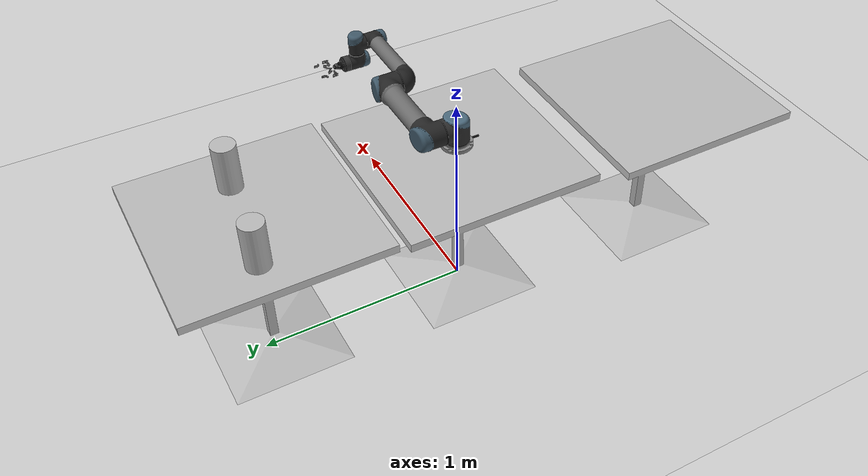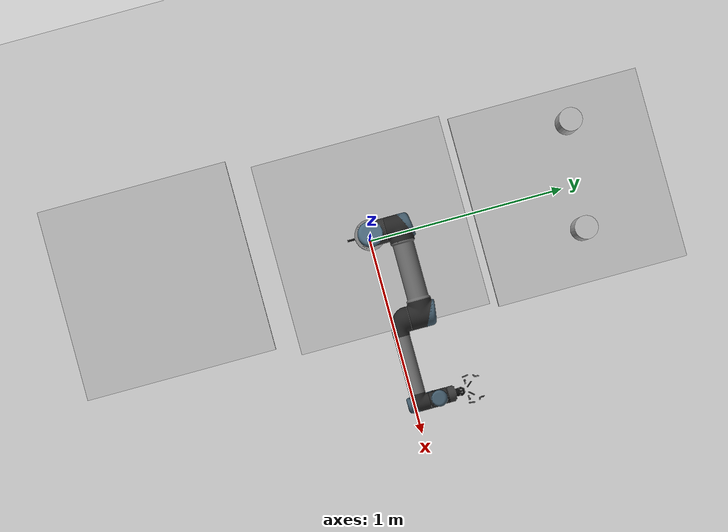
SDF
<sdf version="1.7">
 <world name="default">
  <light name="sun" type="directional">
   <pose>0 0 10 0 -0 0</pose>
   <diffuse>0.8 0.8 0.8 1</diffuse>
   <specular>0.2 0.2 0.2 1</specular>
   <attenuation>
    <range>1000</range>
    <constant>0.9</constant>
    <linear>0.01</linear>
    <quadratic>0.001</quadratic>
   </attenuation>
   <direction>-0.5 0.1 -0.9</direction>
   <spot><inner_angle>0</inner_angle><outer_angle>0</outer_angle><falloff>0</falloff></spot>
  </light>
  <model name="ground_plane">
   <static>1</static>
   <link name="link">
    <collision name="collision">
     <geometry><plane><normal>0 0 1</normal><size>100 100</size></plane></geometry>
     <surface>
      <contact><collide_bitmask>65535</collide_bitmask></contact>
      <friction><ode><mu>100</mu><mu2>50</mu2></ode></friction>
     </surface>
    </collision>
    <visual name="visual">
     <cast_shadows>0</cast_shadows>
     <geometry><plane><normal>0 0 1</normal><size>100 100</size></plane></geometry>
     <material>
      <script><uri>file://media/materials/scripts/gazebo.material</uri><name>Gazebo/Grey</name></script>
     </material>
    </visual>
   </link>
  </model>
  <gravity>0 0 -9.8</gravity>
  <magnetic_field>6e-06 2.3e-05 -4.2e-05</magnetic_field>
  <atmosphere type="adiabatic"/>
  <physics type="ode">
   <max_step_size>0.001</max_step_size>
   <real_time_factor>1</real_time_factor>
   <real_time_update_rate>1000</real_time_update_rate>
  </physics>
  <scene><ambient>0.4 0.4 0.4 1</ambient><background>0.7 0.7 0.7 1</background><shadows>1</shadows></scene>
  <spherical_coordinates>
   <surface_model>EARTH_WGS84</surface_model>
   <latitude_deg>0</latitude_deg>
   <longitude_deg>0</longitude_deg>
   <elevation>0</elevation>
   <heading_deg>0</heading_deg>
  </spherical_coordinates>
  <model name="cafe_table">
   <link name="link">
    <visual name="visual">
     <geometry><mesh><uri>model://cafe_table/meshes/cafe_table.dae</uri></mesh></geometry>
     <material><shader type="pixel"/></material>
    </visual>
    <collision name="surface">
     <pose>0 0 0.755 0 -0 0</pose>
     <geometry><box><size>0.913 0.913 0.04</size></box></geometry>
     <surface>
      <friction>
       <ode><mu>1</mu><mu2>1</mu2><fdir1>0 0 0</fdir1><slip1>0</slip1><slip2>0</slip2></ode>
       <torsional>
        <coefficient>1</coefficient>
        <patch_radius>0</patch_radius>
        <surface_radius>0</surface_radius>
        <use_patch_radius>1</use_patch_radius>
        <ode><slip>0</slip></ode>
       </torsional>
      </friction>
      <bounce><restitution_coefficient>0</restitution_coefficient><threshold>1e+06</threshold></bounce>
      <contact>
       <collide_without_contact>0</collide_without_contact>
       <collide_without_contact_bitmask>1</collide_without_contact_bitmask>
       <collide_bitmask>1</collide_bitmask>
       <ode>
        <soft_cfm>0</soft_cfm>
        <soft_erp>0.2</soft_erp>
        <kp>1e+13</kp>
        <kd>1</kd>
        <max_vel>0.01</max_vel>
        <min_depth>0</min_depth>
       </ode>
       <bullet>
        <split_impulse>1</split_impulse>
        <split_impulse_penetration_threshold>-0.01</split_impulse_penetration_threshold>
        <soft_cfm>0</soft_cfm>
        <soft_erp>0.2</soft_erp>
        <kp>1e+13</kp>
        <kd>1</kd>
       </bullet>
      </contact>
     </surface>
    </collision>
    <collision name="base">
     <pose>0 0 0.02 0 -0 0</pose>
     <geometry><box><size>0.56 0.56 0.04</size></box></geometry>
     <surface>
      <friction>
       <ode><mu>1</mu><mu2>1</mu2><fdir1>0 0 0</fdir1><slip1>0</slip1><slip2>0</slip2></ode>
       <torsional>
        <coefficient>1</coefficient>
        <patch_radius>0</patch_radius>
        <surface_radius>0</surface_radius>
        <use_patch_radius>1</use_patch_radius>
        <ode><slip>0</slip></ode>
       </torsional>
      </friction>
      <bounce><restitution_coefficient>0</restitution_coefficient><threshold>1e+06</threshold></bounce>
      <contact>
       <collide_without_contact>0</collide_without_contact>
       <collide_without_contact_bitmask>1</collide_without_contact_bitmask>
       <collide_bitmask>1</collide_bitmask>
       <ode>
        <soft_cfm>0</soft_cfm>
        <soft_erp>0.2</soft_erp>
        <kp>1e+13</kp>
        <kd>1</kd>
        <max_vel>0.01</max_vel>
        <min_depth>0</min_depth>
       </ode>
       <bullet>
        <split_impulse>1</split_impulse>
        <split_impulse_penetration_threshold>-0.01</split_impulse_penetration_threshold>
        <soft_cfm>0</soft_cfm>
        <soft_erp>0.2</soft_erp>
        <kp>1e+13</kp>
        <kd>1</kd>
       </bullet>
      </contact>
     </surface>
    </collision>
    <collision name="column">
     <pose>0 0 0.37 0 -0 0</pose>
     <geometry><box><size>0.042 0.042 0.74</size></box></geometry>
     <surface>
      <friction>
       <ode><mu>1</mu><mu2>1</mu2><fdir1>0 0 0</fdir1><slip1>0</slip1><slip2>0</slip2></ode>
       <torsional>
        <coefficient>1</coefficient>
        <patch_radius>0</patch_radius>
        <surface_radius>0</surface_radius>
        <use_patch_radius>1</use_patch_radius>
        <ode><slip>0</slip></ode>
       </torsional>
      </friction>
      <bounce><restitution_coefficient>0</restitution_coefficient><threshold>1e+06</threshold></bounce>
      <contact>
       <collide_without_contact>0</collide_without_contact>
       <collide_without_contact_bitmask>1</collide_without_contact_bitmask>
       <collide_bitmask>1</collide_bitmask>
       <ode>
        <soft_cfm>0</soft_cfm>
        <soft_erp>0.2</soft_erp>
        <kp>1e+13</kp>
        <kd>1</kd>
        <max_vel>0.01</max_vel>
        <min_depth>0</min_depth>
       </ode>
       <bullet>
        <split_impulse>1</split_impulse>
        <split_impulse_penetration_threshold>-0.01</split_impulse_penetration_threshold>
        <soft_cfm>0</soft_cfm>
        <soft_erp>0.2</soft_erp>
        <kp>1e+13</kp>
        <kd>1</kd>
       </bullet>
      </contact>
     </surface>
    </collision>
   </link>
   <static>1</static>
  </model>
  <model name="cafe_table_0_clone_0">
   <static>1</static>
   <link name="link">
    <collision name="surface">
     <pose>0 0 0.755 0 -0 0</pose>
     <geometry><box><size>0.913 0.913 0.04</size></box></geometry>
    </collision>
    <collision name="column">
     <pose>0 0 0.37 0 -0 0</pose>
     <geometry><box><size>0.042 0.042 0.74</size></box></geometry>
    </collision>
    <collision name="base">
     <pose>0 0 0.02 0 -0 0</pose>
     <geometry><box><size>0.56 0.56 0.04</size></box></geometry>
    </collision>
    <visual name="visual">
     <geometry><mesh><uri>model://cafe_table/meshes/cafe_table.dae</uri></mesh></geometry>
    </visual>
   </link>
   <pose>0.024717 0.95271 0 0 -0 0</pose>
  </model>
  <model name="cafe_table_0_clone_0_clone_0">
   <static>1</static>
   <link name="link">
    <collision name="surface">
     <pose>0 0 0.755 0 -0 0</pose>
     <geometry><box><size>0.913 0.913 0.04</size></box></geometry>
    </collision>
    <collision name="column">
     <pose>0 0 0.37 0 -0 0</pose>
     <geometry><box><size>0.042 0.042 0.74</size></box></geometry>
    </collision>
    <collision name="base">
     <pose>0 0 0.02 0 -0 0</pose>
     <geometry><box><size>0.56 0.56 0.04</size></box></geometry>
    </collision>
    <visual name="visual">
     <geometry><mesh><uri>model://cafe_table/meshes/cafe_table.dae</uri></mesh></geometry>
    </visual>
   </link>
   <pose>-0.057237 -1.02563 0 0 -0 0</pose>
  </model>
  <model name="beer_clone">
   <link name="link">
    <pose>0 0 0.115 0 -0 0</pose>
    <inertial>
     <mass>0.39</mass>
     <inertia><ixx>0.00058</ixx><ixy>0</ixy><ixz>0</ixz><iyy>0.00058</iyy><iyz>0</iyz><izz>0.00019</izz></inertia>
    </inertial>
    <collision name="collision">
     <geometry><cylinder><radius>0.055</radius><length>0.23</length></cylinder></geometry>
    </collision>
    <visual name="visual">
     <geometry><cylinder><radius>0.055</radius><length>0.23</length></cylinder></geometry>
     <material>
      <script>
       <uri>model://beer/materials/scripts</uri>
       <uri>model://beer/materials/textures</uri>
       <name>Beer/Diffuse</name>
      </script>
     </material>
    </visual>
   </link>
   <pose>-0.265345 1.02876 0.775001 2.3e-05 5e-06 0.001222</pose>
  </model>
  <model name="robot">
   <joint name="world_joint" type="fixed">
    <pose relative_to="__model__">0 0 0 0 -0 0</pose>
    <parent>world</parent>
    <child>base_link</child>
   </joint>
   <link name="base_link">
    <pose relative_to="world_joint">0 0 0 0 -0 0</pose>
    <inertial>
     <mass>4</mass>
     <inertia>
      <ixx>0.00443333</ixx>
      <ixy>0</ixy>
      <ixz>0</ixz>
      <iyy>0.00443333</iyy>
      <iyz>0</iyz>
      <izz>0.0072</izz>
     </inertia>
    </inertial>
    <collision name="base_link_collision">
     <geometry>
      <mesh>
       <scale>1 1 1</scale>
       <uri>/home/jack/catkin_ws/src/IE482-SP24-PROJECT/universal_robot/ur_description/meshes/ur5/collision/base.stl</uri>
      </mesh>
     </geometry>
    </collision>
    <visual name="base_link_visual">
     <geometry>
      <mesh>
       <scale>1 1 1</scale>
       <uri>/home/jack/catkin_ws/src/IE482-SP24-PROJECT/universal_robot/ur_description/meshes/ur5/visual/base.dae</uri>
      </mesh>
     </geometry>
    </visual>
   </link>
   <joint name="shoulder_pan_joint" type="revolute">
    <pose relative_to="base_link">0 0 0.089159 0 -0 0</pose>
    <parent>base_link</parent>
    <child>shoulder_link</child>
    <axis>
     <xyz>0 0 1</xyz>
     <limit><lower>-3.14159</lower><upper>3.14159</upper><effort>150</effort><velocity>3.15</velocity></limit>
     <dynamics>
      <damping>0</damping>
      <friction>0</friction>
      <spring_reference>0</spring_reference>
      <spring_stiffness>0</spring_stiffness>
     </dynamics>
    </axis>
   </joint>
   <link name="shoulder_link">
    <pose relative_to="shoulder_pan_joint">0 0 0 0 -0 0</pose>
    <inertial>
     <mass>3.7</mass>
     <inertia>
      <ixx>0.0102675</ixx>
      <ixy>0</ixy>
      <ixz>0</ixz>
      <iyy>0.0102675</iyy>
      <iyz>0</iyz>
      <izz>0.00666</izz>
     </inertia>
    </inertial>
    <collision name="shoulder_link_collision">
     <geometry>
      <mesh>
       <scale>1 1 1</scale>
       <uri>/home/jack/catkin_ws/src/IE482-SP24-PROJECT/universal_robot/ur_description/meshes/ur5/collision/shoulder.stl</uri>
      </mesh>
     </geometry>
    </collision>
    <visual name="shoulder_link_visual">
     <geometry>
      <mesh>
       <scale>1 1 1</scale>
       <uri>/home/jack/catkin_ws/src/IE482-SP24-PROJECT/universal_robot/ur_description/meshes/ur5/visual/shoulder.dae</uri>
      </mesh>
     </geometry>
    </visual>
    <self_collide>1</self_collide>
   </link>
   <joint name="shoulder_lift_joint" type="revolute">
    <pose relative_to="shoulder_link">0 0.13585 0 3.14159 1.57079 3.14159</pose>
    <parent>shoulder_link</parent>
    <child>upper_arm_link</child>
    <axis>
     <xyz>0 1 0</xyz>
     <limit><lower>-3.14159</lower><upper>3.14159</upper><effort>150</effort><velocity>3.15</velocity></limit>
     <dynamics>
      <damping>0</damping>
      <friction>0</friction>
      <spring_reference>0</spring_reference>
      <spring_stiffness>0</spring_stiffness>
     </dynamics>
    </axis>
   </joint>
   <link name="upper_arm_link">
    <pose relative_to="shoulder_lift_joint">0 0 0 0 -0 0</pose>
    <inertial>
     <pose>0 0 0.28 0 -0 0</pose>
     <mass>8.393</mass>
     <inertia>
      <ixx>0.226891</ixx>
      <ixy>0</ixy>
      <ixz>0</ixz>
      <iyy>0.226891</iyy>
      <iyz>0</iyz>
      <izz>0.0151074</izz>
     </inertia>
    </inertial>
    <collision name="upper_arm_link_collision">
     <geometry>
      <mesh>
       <scale>1 1 1</scale>
       <uri>/home/jack/catkin_ws/src/IE482-SP24-PROJECT/universal_robot/ur_description/meshes/ur5/collision/upperarm.stl</uri>
      </mesh>
     </geometry>
    </collision>
    <visual name="upper_arm_link_visual">
     <geometry>
      <mesh>
       <scale>1 1 1</scale>
       <uri>/home/jack/catkin_ws/src/IE482-SP24-PROJECT/universal_robot/ur_description/meshes/ur5/visual/upperarm.dae</uri>
      </mesh>
     </geometry>
    </visual>
    <self_collide>1</self_collide>
   </link>
   <joint name="elbow_joint" type="revolute">
    <pose relative_to="upper_arm_link">0 -0.1197 0.425 0 -0 0</pose>
    <parent>upper_arm_link</parent>
    <child>forearm_link</child>
    <axis>
     <xyz>0 1 0</xyz>
     <limit><lower>-3.14159</lower><upper>3.14159</upper><effort>150</effort><velocity>3.15</velocity></limit>
     <dynamics>
      <damping>0</damping>
      <friction>0</friction>
      <spring_reference>0</spring_reference>
      <spring_stiffness>0</spring_stiffness>
     </dynamics>
    </axis>
   </joint>
   <link name="forearm_link">
    <pose relative_to="elbow_joint">0 0 0 0 -0 0</pose>
    <inertial>
     <pose>0 0 0.196125 0 -0 0</pose>
     <mass>2.275</mass>
     <inertia>
      <ixx>0.0312168</ixx>
      <ixy>0</ixy>
      <ixz>0</ixz>
      <iyy>0.0312168</iyy>
      <iyz>0</iyz>
      <izz>0.004095</izz>
     </inertia>
    </inertial>
    <collision name="forearm_link_collision">
     <geometry>
      <mesh>
       <scale>1 1 1</scale>
       <uri>/home/jack/catkin_ws/src/IE482-SP24-PROJECT/universal_robot/ur_description/meshes/ur5/collision/forearm.stl</uri>
      </mesh>
     </geometry>
    </collision>
    <visual name="forearm_link_visual">
     <geometry>
      <mesh>
       <scale>1 1 1</scale>
       <uri>/home/jack/catkin_ws/src/IE482-SP24-PROJECT/universal_robot/ur_description/meshes/ur5/visual/forearm.dae</uri>
      </mesh>
     </geometry>
    </visual>
    <self_collide>1</self_collide>
   </link>
   <joint name="wrist_1_joint" type="revolute">
    <pose relative_to="forearm_link">0 0 0.39225 3.14159 1.57079 3.14159</pose>
    <parent>forearm_link</parent>
    <child>wrist_1_link</child>
    <axis>
     <xyz>0 1 0</xyz>
     <limit><lower>-3.14159</lower><upper>3.14159</upper><effort>28</effort><velocity>3.2</velocity></limit>
     <dynamics>
      <damping>0</damping>
      <friction>0</friction>
      <spring_reference>0</spring_reference>
      <spring_stiffness>0</spring_stiffness>
     </dynamics>
    </axis>
   </joint>
   <link name="wrist_1_link">
    <pose relative_to="wrist_1_joint">0 0 0 0 -0 0</pose>
    <inertial>
     <pose>0 0.093 0 0 -0 0</pose>
     <mass>1.219</mass>
     <inertia>
      <ixx>0.0025599</ixx>
      <ixy>0</ixy>
      <ixz>0</ixz>
      <iyy>0.0025599</iyy>
      <iyz>0</iyz>
      <izz>0.0021942</izz>
     </inertia>
    </inertial>
    <collision name="wrist_1_link_collision">
     <geometry>
      <mesh>
       <scale>1 1 1</scale>
       <uri>/home/jack/catkin_ws/src/IE482-SP24-PROJECT/universal_robot/ur_description/meshes/ur5/collision/wrist1.stl</uri>
      </mesh>
     </geometry>
    </collision>
    <visual name="wrist_1_link_visual">
     <geometry>
      <mesh>
       <scale>1 1 1</scale>
       <uri>/home/jack/catkin_ws/src/IE482-SP24-PROJECT/universal_robot/ur_description/meshes/ur5/visual/wrist1.dae</uri>
      </mesh>
     </geometry>
    </visual>
    <self_collide>1</self_collide>
   </link>
   <joint name="wrist_2_joint" type="revolute">
    <pose relative_to="wrist_1_link">0 0.093 0 0 -0 0</pose>
    <parent>wrist_1_link</parent>
    <child>wrist_2_link</child>
    <axis>
     <xyz>0 0 1</xyz>
     <limit><lower>-3.14159</lower><upper>3.14159</upper><effort>28</effort><velocity>3.2</velocity></limit>
     <dynamics>
      <damping>0</damping>
      <friction>0</friction>
      <spring_reference>0</spring_reference>
      <spring_stiffness>0</spring_stiffness>
     </dynamics>
    </axis>
   </joint>
   <link name="wrist_2_link">
    <pose relative_to="wrist_2_joint">0 0 0 0 -0 0</pose>
    <inertial>
     <pose>0 0 0.09465 0 -0 0</pose>
     <mass>1.219</mass>
     <inertia>
      <ixx>0.0025599</ixx>
      <ixy>0</ixy>
      <ixz>0</ixz>
      <iyy>0.0025599</iyy>
      <iyz>0</iyz>
      <izz>0.0021942</izz>
     </inertia>
    </inertial>
    <collision name="wrist_2_link_collision">
     <geometry>
      <mesh>
       <scale>1 1 1</scale>
       <uri>/home/jack/catkin_ws/src/IE482-SP24-PROJECT/universal_robot/ur_description/meshes/ur5/collision/wrist2.stl</uri>
      </mesh>
     </geometry>
    </collision>
    <visual name="wrist_2_link_visual">
     <geometry>
      <mesh>
       <scale>1 1 1</scale>
       <uri>/home/jack/catkin_ws/src/IE482-SP24-PROJECT/universal_robot/ur_description/meshes/ur5/visual/wrist2.dae</uri>
      </mesh>
     </geometry>
    </visual>
    <self_collide>1</self_collide>
   </link>
   <joint name="wrist_3_joint" type="revolute">
    <pose relative_to="wrist_2_link">0 0 0.09465 0 -0 0</pose>
    <parent>wrist_2_link</parent>
    <child>wrist_3_link</child>
    <axis>
     <xyz>0 1 0</xyz>
     <limit><lower>-3.14159</lower><upper>3.14159</upper><effort>28</effort><velocity>3.2</velocity></limit>
     <dynamics>
      <damping>0</damping>
      <friction>0</friction>
      <spring_reference>0</spring_reference>
      <spring_stiffness>0</spring_stiffness>
     </dynamics>
    </axis>
    <physics>
     <provide_feedback>1</provide_feedback>
     <ode><limit><cfm>0</cfm><erp>0.2</erp></limit><provide_feedback>1</provide_feedback></ode>
    </physics>
   </joint>
   <link name="wrist_3_link">
    <pose relative_to="wrist_3_joint">0 0 0 0 -0 0</pose>
    <inertial>
     <pose>0 0.07837 0 1.5708 -0 0</pose>
     <mass>0.824851</mass>
     <inertia>
      <ixx>0.00123787</ixx>
      <ixy>-5.85795e-35</ixy>
      <ixz>2.06792e-19</ixz>
      <iyy>0.00129887</iyy>
      <iyz>2.36303e-19</iyz>
      <izz>0.000512117</izz>
     </inertia>
    </inertial>
    <collision name="wrist_3_link_collision">
     <geometry>
      <mesh>
       <scale>1 1 1</scale>
       <uri>/home/jack/catkin_ws/src/IE482-SP24-PROJECT/universal_robot/ur_description/meshes/ur5/collision/wrist3.stl</uri>
      </mesh>
     </geometry>
    </collision>
    <collision name="wrist_3_link_fixed_joint_lump__ee_link_collision_1">
     <pose>-0 0.0723 0 0 -0 1.5708</pose>
     <geometry><box><size>0.01 0.01 0.01</size></box></geometry>
    </collision>
    <collision name="wrist_3_link_fixed_joint_lump__robotiq_85_base_link_collision_2">
     <pose>0 0.0823 0 0 -0 1.5708</pose>
     <geometry>
      <mesh>
       <scale>1 1 1</scale>
       <uri>/home/jack/catkin_ws/src/IE482-SP24-PROJECT/robotiq/robotiq_description/meshes/collision/robotiq_85_base_link.stl</uri>
      </mesh>
     </geometry>
    </collision>
    <visual name="wrist_3_link_visual">
     <geometry>
      <mesh>
       <scale>1 1 1</scale>
       <uri>/home/jack/catkin_ws/src/IE482-SP24-PROJECT/universal_robot/ur_description/meshes/ur5/visual/wrist3.dae</uri>
      </mesh>
     </geometry>
    </visual>
    <visual name="wrist_3_link_fixed_joint_lump__robotiq_85_base_link_visual_1">
     <pose>0 0.0823 0 0 -0 1.5708</pose>
     <geometry>
      <mesh>
       <scale>1 1 1</scale>
       <uri>/home/jack/catkin_ws/src/IE482-SP24-PROJECT/robotiq/robotiq_description/meshes/visual/robotiq_85_base_link.dae</uri>
      </mesh>
     </geometry>
    </visual>
    <self_collide>1</self_collide>
   </link>
   <joint name="robotiq_85_left_inner_knuckle_joint" type="revolute">
    <pose relative_to="wrist_3_link">-0.0127 0.14372 0 3.14159 -0 1.5708</pose>
    <parent>wrist_3_link</parent>
    <child>robotiq_85_left_inner_knuckle_link</child>
    <axis>
     <xyz>0 0 1</xyz>
     <limit><effort>0.1</effort><velocity>100</velocity><lower>-1e+16</lower><upper>1e+16</upper></limit>
     <dynamics><spring_reference>0</spring_reference><spring_stiffness>0</spring_stiffness></dynamics>
    </axis>
   </joint>
   <link name="robotiq_85_left_inner_knuckle_link">
    <pose relative_to="robotiq_85_left_inner_knuckle_joint">0 0 0 0 -0 0</pose>
    <inertial>
     <mass>0.029951</mass>
     <inertia><ixx>3.9e-05</ixx><ixy>0</ixy><ixz>0</ixz><iyy>5e-06</iyy><iyz>0</iyz><izz>3.5e-05</izz></inertia>
    </inertial>
    <collision name="robotiq_85_left_inner_knuckle_link_collision">
     <geometry>
      <mesh>
       <scale>1 1 1</scale>
       <uri>/home/jack/catkin_ws/src/IE482-SP24-PROJECT/robotiq/robotiq_description/meshes/collision/robotiq_85_inner_knuckle_link.stl</uri>
      </mesh>
     </geometry>
    </collision>
    <visual name="robotiq_85_left_inner_knuckle_link_visual">
     <geometry>
      <mesh>
       <scale>1 1 1</scale>
       <uri>/home/jack/catkin_ws/src/IE482-SP24-PROJECT/robotiq/robotiq_description/meshes/visual/robotiq_85_inner_knuckle_link.dae</uri>
      </mesh>
     </geometry>
    </visual>
   </link>
   <joint name="robotiq_85_left_finger_tip_joint" type="revolute">
    <pose relative_to="robotiq_85_left_inner_knuckle_link">0.04304 -0.037599 0 0 -0 0</pose>
    <parent>robotiq_85_left_inner_knuckle_link</parent>
    <child>robotiq_85_left_finger_tip_link</child>
    <axis>
     <xyz>0 0 1</xyz>
     <limit><effort>0.1</effort><velocity>100</velocity><lower>-1e+16</lower><upper>1e+16</upper></limit>
     <dynamics><spring_reference>0</spring_reference><spring_stiffness>0</spring_stiffness></dynamics>
    </axis>
   </joint>
   <link name="robotiq_85_left_finger_tip_link">
    <pose relative_to="robotiq_85_left_finger_tip_joint">0 0 0 0 -0 0</pose>
    <inertial>
     <mass>0.019555</mass>
     <inertia><ixx>2e-06</ixx><ixy>0</ixy><ixz>0</ixz><iyy>5e-06</iyy><iyz>0</iyz><izz>6e-06</izz></inertia>
    </inertial>
    <collision name="robotiq_85_left_finger_tip_link_collision">
     <geometry>
      <mesh>
       <scale>1 1 1</scale>
       <uri>/home/jack/catkin_ws/src/IE482-SP24-PROJECT/robotiq/robotiq_description/meshes/collision/robotiq_85_finger_tip_link.stl</uri>
      </mesh>
     </geometry>
     <surface>
      <contact><ode><kp>1e+06</kp><kd>1</kd><min_depth>0.001</min_depth></ode></contact>
      <friction><ode><mu>0.9</mu><mu2>0.9</mu2></ode></friction>
     </surface>
    </collision>
    <visual name="robotiq_85_left_finger_tip_link_visual">
     <geometry>
      <mesh>
       <scale>1 1 1</scale>
       <uri>/home/jack/catkin_ws/src/IE482-SP24-PROJECT/robotiq/robotiq_description/meshes/visual/robotiq_85_finger_tip_link.dae</uri>
      </mesh>
     </geometry>
    </visual>
   </link>
   <joint name="robotiq_85_left_knuckle_joint" type="revolute">
    <pose relative_to="wrist_3_link">-0.030601 0.137205 0 3.14159 -0 1.5708</pose>
    <parent>wrist_3_link</parent>
    <child>robotiq_85_left_knuckle_link</child>
    <axis>
     <xyz>0 0 1</xyz>
     <limit><lower>0</lower><upper>0.80285</upper><effort>1000</effort><velocity>0.5</velocity></limit>
     <dynamics><spring_reference>0</spring_reference><spring_stiffness>0</spring_stiffness></dynamics>
    </axis>
   </joint>
   <link name="robotiq_85_left_knuckle_link">
    <pose relative_to="robotiq_85_left_knuckle_joint">0 0 0 0 -0 0</pose>
    <inertial>
     <pose>-0.002436 -0.018774 0 0 -0 0</pose>
     <mass>0.0458</mass>
     <inertia>
      <ixx>2.29304e-05</ixx>
      <ixy>-4.4183e-06</ixy>
      <ixz>0</ixz>
      <iyy>2.2184e-05</iyy>
      <iyz>0</iyz>
      <izz>4.11145e-05</izz>
     </inertia>
    </inertial>
    <collision name="robotiq_85_left_knuckle_link_collision">
     <geometry>
      <mesh>
       <scale>1 1 1</scale>
       <uri>/home/jack/catkin_ws/src/IE482-SP24-PROJECT/robotiq/robotiq_description/meshes/collision/robotiq_85_knuckle_link.stl</uri>
      </mesh>
     </geometry>
    </collision>
    <collision name="robotiq_85_left_knuckle_link_fixed_joint_lump__robotiq_85_left_finger_link_collision_1">
     <pose>-0.004086 -0.031486 0 0 -0 0</pose>
     <geometry>
      <mesh>
       <scale>1 1 1</scale>
       <uri>/home/jack/catkin_ws/src/IE482-SP24-PROJECT/robotiq/robotiq_description/meshes/collision/robotiq_85_finger_link.stl</uri>
      </mesh>
     </geometry>
    </collision>
    <visual name="robotiq_85_left_knuckle_link_visual">
     <geometry>
      <mesh>
       <scale>1 1 1</scale>
       <uri>/home/jack/catkin_ws/src/IE482-SP24-PROJECT/robotiq/robotiq_description/meshes/visual/robotiq_85_knuckle_link.dae</uri>
      </mesh>
     </geometry>
    </visual>
    <visual name="robotiq_85_left_knuckle_link_fixed_joint_lump__robotiq_85_left_finger_link_visual_1">
     <pose>-0.004086 -0.031486 0 0 -0 0</pose>
     <geometry>
      <mesh>
       <scale>1 1 1</scale>
       <uri>/home/jack/catkin_ws/src/IE482-SP24-PROJECT/robotiq/robotiq_description/meshes/visual/robotiq_85_finger_link.dae</uri>
      </mesh>
     </geometry>
    </visual>
   </link>
   <joint name="robotiq_85_right_inner_knuckle_joint" type="revolute">
    <pose relative_to="wrist_3_link">0.0127 0.14372 0 0 -0 1.5708</pose>
    <parent>wrist_3_link</parent>
    <child>robotiq_85_right_inner_knuckle_link</child>
    <axis>
     <xyz>0 0 1</xyz>
     <limit><effort>0.1</effort><velocity>100</velocity><lower>-1e+16</lower><upper>1e+16</upper></limit>
     <dynamics><spring_reference>0</spring_reference><spring_stiffness>0</spring_stiffness></dynamics>
    </axis>
   </joint>
   <link name="robotiq_85_right_inner_knuckle_link">
    <pose relative_to="robotiq_85_right_inner_knuckle_joint">0 0 0 0 -0 0</pose>
    <inertial>
     <mass>0.029951</mass>
     <inertia><ixx>3.9e-05</ixx><ixy>0</ixy><ixz>0</ixz><iyy>5e-06</iyy><iyz>0</iyz><izz>3.5e-05</izz></inertia>
    </inertial>
    <collision name="robotiq_85_right_inner_knuckle_link_collision">
     <geometry>
      <mesh>
       <scale>1 1 1</scale>
       <uri>/home/jack/catkin_ws/src/IE482-SP24-PROJECT/robotiq/robotiq_description/meshes/collision/robotiq_85_inner_knuckle_link.stl</uri>
      </mesh>
     </geometry>
    </collision>
    <visual name="robotiq_85_right_inner_knuckle_link_visual">
     <geometry>
      <mesh>
       <scale>1 1 1</scale>
       <uri>/home/jack/catkin_ws/src/IE482-SP24-PROJECT/robotiq/robotiq_description/meshes/visual/robotiq_85_inner_knuckle_link.dae</uri>
      </mesh>
     </geometry>
    </visual>
   </link>
   <joint name="robotiq_85_right_finger_tip_joint" type="revolute">
    <pose relative_to="robotiq_85_right_inner_knuckle_link">0.04304 -0.037599 0 0 -0 0</pose>
    <parent>robotiq_85_right_inner_knuckle_link</parent>
    <child>robotiq_85_right_finger_tip_link</child>
    <axis>
     <xyz>0 0 1</xyz>
     <limit><effort>0.1</effort><velocity>100</velocity><lower>-1e+16</lower><upper>1e+16</upper></limit>
     <dynamics><spring_reference>0</spring_reference><spring_stiffness>0</spring_stiffness></dynamics>
    </axis>
   </joint>
   <link name="robotiq_85_right_finger_tip_link">
    <pose relative_to="robotiq_85_right_finger_tip_joint">0 0 0 0 -0 0</pose>
    <inertial>
     <mass>0.019555</mass>
     <inertia><ixx>2e-06</ixx><ixy>0</ixy><ixz>0</ixz><iyy>5e-06</iyy><iyz>0</iyz><izz>6e-06</izz></inertia>
    </inertial>
    <collision name="robotiq_85_right_finger_tip_link_collision">
     <geometry>
      <mesh>
       <scale>1 1 1</scale>
       <uri>/home/jack/catkin_ws/src/IE482-SP24-PROJECT/robotiq/robotiq_description/meshes/collision/robotiq_85_finger_tip_link.stl</uri>
      </mesh>
     </geometry>
     <surface>
      <contact><ode><kp>1e+06</kp><kd>1</kd><min_depth>0.001</min_depth></ode></contact>
      <friction><ode><mu>0.9</mu><mu2>0.9</mu2></ode></friction>
     </surface>
    </collision>
    <visual name="robotiq_85_right_finger_tip_link_visual">
     <geometry>
      <mesh>
       <scale>1 1 1</scale>
       <uri>/home/jack/catkin_ws/src/IE482-SP24-PROJECT/robotiq/robotiq_description/meshes/visual/robotiq_85_finger_tip_link.dae</uri>
      </mesh>
     </geometry>
    </visual>
   </link>
   <joint name="robotiq_85_right_knuckle_joint" type="revolute">
    <pose relative_to="wrist_3_link">0.030601 0.137205 0 0 -0 1.5708</pose>
    <parent>wrist_3_link</parent>
    <child>robotiq_85_right_knuckle_link</child>
    <axis>
     <xyz>0 0 1</xyz>
     <limit><effort>1000</effort><velocity>100</velocity><lower>-1e+16</lower><upper>1e+16</upper></limit>
     <dynamics><spring_reference>0</spring_reference><spring_stiffness>0</spring_stiffness></dynamics>
    </axis>
   </joint>
   <link name="robotiq_85_right_knuckle_link">
    <pose relative_to="robotiq_85_right_knuckle_joint">0 0 0 0 -0 0</pose>
    <inertial>
     <pose>-0.002436 -0.018774 0 0 -0 0</pose>
     <mass>0.0458</mass>
     <inertia>
      <ixx>2.29304e-05</ixx>
      <ixy>-4.4183e-06</ixy>
      <ixz>0</ixz>
      <iyy>2.2184e-05</iyy>
      <iyz>0</iyz>
      <izz>4.11145e-05</izz>
     </inertia>
    </inertial>
    <collision name="robotiq_85_right_knuckle_link_collision">
     <geometry>
      <mesh>
       <scale>1 1 1</scale>
       <uri>/home/jack/catkin_ws/src/IE482-SP24-PROJECT/robotiq/robotiq_description/meshes/collision/robotiq_85_knuckle_link.stl</uri>
      </mesh>
     </geometry>
    </collision>
    <collision name="robotiq_85_right_knuckle_link_fixed_joint_lump__robotiq_85_right_finger_link_collision_1">
     <pose>-0.004086 -0.031486 0 0 -0 0</pose>
     <geometry>
      <mesh>
       <scale>1 1 1</scale>
       <uri>/home/jack/catkin_ws/src/IE482-SP24-PROJECT/robotiq/robotiq_description/meshes/collision/robotiq_85_finger_link.stl</uri>
      </mesh>
     </geometry>
    </collision>
    <visual name="robotiq_85_right_knuckle_link_visual">
     <geometry>
      <mesh>
       <scale>1 1 1</scale>
       <uri>/home/jack/catkin_ws/src/IE482-SP24-PROJECT/robotiq/robotiq_description/meshes/visual/robotiq_85_knuckle_link.dae</uri>
      </mesh>
     </geometry>
    </visual>
    <visual name="robotiq_85_right_knuckle_link_fixed_joint_lump__robotiq_85_right_finger_link_visual_1">
     <pose>-0.004086 -0.031486 0 0 -0 0</pose>
     <geometry>
      <mesh>
       <scale>1 1 1</scale>
       <uri>/home/jack/catkin_ws/src/IE482-SP24-PROJECT/robotiq/robotiq_description/meshes/visual/robotiq_85_finger_link.dae</uri>
      </mesh>
     </geometry>
    </visual>
   </link>
   <plugin name="ros_control" filename="libgazebo_ros_control.so"><robotNamespace>/</robotNamespace></plugin>
   <plugin name="gazebo_grasp_fix" filename="libgazebo_grasp_fix.so">
    <arm>
     <arm_name>ur5_arm</arm_name>
     <palm_link>wrist_3_link</palm_link>
     <palm_link>robotiq_85_right_knuckle_link</palm_link>
     <palm_link>robotiq_85_left_knuckle_link</palm_link>
     <palm_link>robotiq_85_left_inner_knuckle_link</palm_link>
     <palm_link>robotiq_85_right_inner_knuckle_link</palm_link>
     <gripper_link>robotiq_85_left_finger_tip_link</gripper_link>
     <gripper_link>robotiq_85_right_finger_tip_link</gripper_link>
    </arm>
    <forces_angle_tolerance>90</forces_angle_tolerance>
    <update_rate>100</update_rate>
    <grip_count_threshold>1</grip_count_threshold>
    <max_grip_count>5</max_grip_count>
    <release_tolerance>0.01</release_tolerance>
    <disable_collisions_on_attach>1</disable_collisions_on_attach>
    <contact_topic>__default_topic__</contact_topic>
    <robotNamespace>/</robotNamespace>
   </plugin>
   <plugin name="mimic_robotiq_85_1" filename="libgazebo_mimic_joint_plugin.so">
    <joint>robotiq_85_left_knuckle_joint</joint>
    <mimicJoint>robotiq_85_right_knuckle_joint</mimicJoint>
    <robotNamespace>/</robotNamespace>
   </plugin>
   <plugin name="mimic_robotiq_85_2" filename="libgazebo_mimic_joint_plugin.so">
    <joint>robotiq_85_left_knuckle_joint</joint>
    <mimicJoint>robotiq_85_left_inner_knuckle_joint</mimicJoint>
    <robotNamespace>/</robotNamespace>
   </plugin>
   <plugin name="mimic_robotiq_85_3" filename="libgazebo_mimic_joint_plugin.so">
    <joint>robotiq_85_left_knuckle_joint</joint>
    <mimicJoint>robotiq_85_right_inner_knuckle_joint</mimicJoint>
    <robotNamespace>/</robotNamespace>
   </plugin>
   <plugin name="mimic_robotiq_85_4" filename="libgazebo_mimic_joint_plugin.so">
    <joint>robotiq_85_left_knuckle_joint</joint>
    <mimicJoint>robotiq_85_left_finger_tip_joint</mimicJoint>
    <multiplier>-1.0</multiplier>
    <offset>0.0</offset>
    <robotNamespace>/</robotNamespace>
   </plugin>
   <plugin name="mimic_robotiq_85_5" filename="libgazebo_mimic_joint_plugin.so">
    <joint>robotiq_85_left_knuckle_joint</joint>
    <mimicJoint>robotiq_85_right_finger_tip_joint</mimicJoint>
    <multiplier>-1.0</multiplier>
    <offset>0.0</offset>
    <robotNamespace>/</robotNamespace>
   </plugin>
   <plugin name="ft_sensor_plugin" filename="libgazebo_ros_ft_sensor.so">
    <updateRate>250.0</updateRate>
    <topicName>ft_sensor/raw</topicName>
    <gaussianNoise>0.0</gaussianNoise>
    <jointName>wrist_3_joint</jointName>
    <robotNamespace>/</robotNamespace>
   </plugin>
   <frame name="base_link-base_fixed_joint" attached_to="base_link"><pose>0 0 0 0 0 -3.14159</pose></frame>
   <frame name="base" attached_to="base_link-base_fixed_joint"/>
   <frame name="ur5_gripper_tcp_joint" attached_to="robotiq_85_base_link"><pose>0.15 0 0 0 -0 0</pose></frame>
   <frame name="ur5_gripper_tcp" attached_to="ur5_gripper_tcp_joint"/>
   <frame name="robotiq_85_base_joint" attached_to="ee_link"/>
   <frame name="robotiq_85_base_link" attached_to="robotiq_85_base_joint"/>
   <frame name="robotiq_85_left_finger_joint" attached_to="robotiq_85_left_knuckle_link">
    <pose>-0.004086 -0.031486 0 0 -0 0</pose>
   </frame>
   <frame name="robotiq_85_left_finger_link" attached_to="robotiq_85_left_finger_joint"/>
   <frame name="robotiq_85_right_finger_joint" attached_to="robotiq_85_right_knuckle_link">
    <pose>-0.004086 -0.031486 0 0 -0 0</pose>
   </frame>
   <frame name="robotiq_85_right_finger_link" attached_to="robotiq_85_right_finger_joint"/>
   <frame name="ee_fixed_joint" attached_to="wrist_3_link"><pose>0 0.0823 0 0 -0 1.5708</pose></frame>
   <frame name="ee_link" attached_to="ee_fixed_joint"/>
   <frame name="wrist_3_link-tool0_fixed_joint" attached_to="wrist_3_link">
    <pose>0 0.0823 0 -1.5708 0 0</pose>
   </frame>
   <frame name="tool0" attached_to="wrist_3_link-tool0_fixed_joint"/>
   <pose>-0 -0 0.8 4.7e-05 -3.9e-05 1e-06</pose>
  </model>
  <model name="beer_clone_clone">
   <link name="link">
    <pose>0 0 0.115 0 -0 0</pose>
    <inertial>
     <mass>0.39</mass>
     <inertia><ixx>0.00058</ixx><ixy>0</ixy><ixz>0</ixz><iyy>0.00058</iyy><iyz>0</iyz><izz>0.00019</izz></inertia>
    </inertial>
    <collision name="collision">
     <geometry><cylinder><radius>0.055</radius><length>0.23</length></cylinder></geometry>
    </collision>
    <visual name="visual">
     <geometry><cylinder><radius>0.055</radius><length>0.23</length></cylinder></geometry>
     <material>
      <script>
       <uri>model://beer/materials/scripts</uri>
       <uri>model://beer/materials/textures</uri>
       <name>Beer/Diffuse</name>
      </script>
     </material>
    </visual>
   </link>
   <pose>0.233552 0.966646 0.774991 -1e-06 -3e-06 0.001977</pose>
  </model>
 </world>
</sdf>
